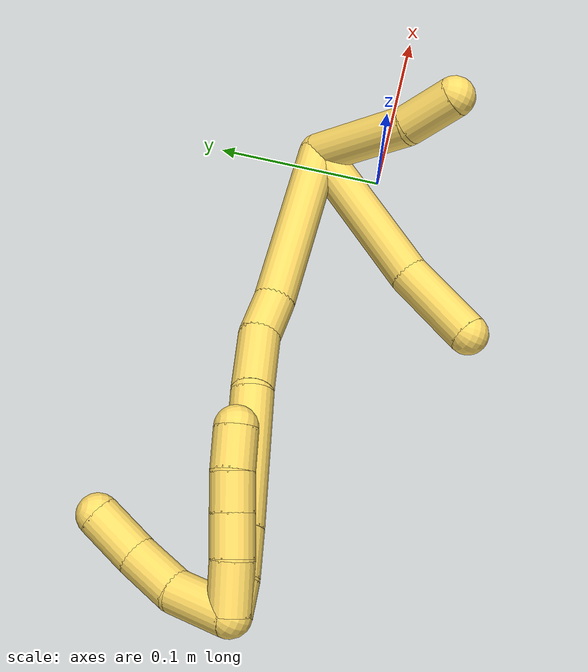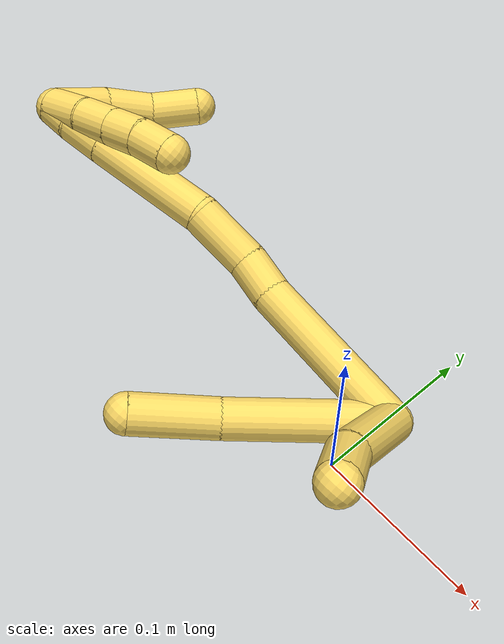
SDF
<sdf version="1.7">
 <world name="default">
  <model name="5">
   <static>0</static>
   <link name="5">
    <collision name="collision-cylinder-e_1_2_8">
     <pose>-0.032607 -0.017758 -0.030638 2.61632 -0.744179 -1.93515</pose>
     <geometry><cylinder><radius>0.0125</radius><length>0.096276</length></cylinder></geometry>
     <surface>
      <friction><ode><mu>1.16</mu><mu2>1.16</mu2><slip1>0</slip1><slip2>0</slip2></ode></friction>
      <contact><ode><kp>1e+06</kp><kd>1</kd><max_vel>0</max_vel><min_depth>0.001</min_depth></ode></contact>
     </surface>
    </collision>
    <visual name="visual-cylinder-e_1_2_8">
     <pose>-0.032607 -0.017758 -0.030638 2.61632 -0.744179 -1.93515</pose>
     <geometry><cylinder><radius>0.0125</radius><length>0.096276</length></cylinder></geometry>
     <material><ambient>1 0.858824 0.4 1</ambient></material>
    </visual>
    <collision name="collision-cylinder-e_2_8_6">
     <pose>-0.081445 -0.050538 -0.076523 2.36357 -0.64879 -1.37409</pose>
     <geometry><cylinder><radius>0.0125</radius><length>0.053724</length></cylinder></geometry>
     <surface>
      <friction><ode><mu>1.16</mu><mu2>1.16</mu2><slip1>0</slip1><slip2>0</slip2></ode></friction>
      <contact><ode><kp>1e+06</kp><kd>1</kd><max_vel>0</max_vel><min_depth>0.001</min_depth></ode></contact>
     </surface>
    </collision>
    <visual name="visual-cylinder-e_2_8_6">
     <pose>-0.081445 -0.050538 -0.076523 2.36357 -0.64879 -1.37409</pose>
     <geometry><cylinder><radius>0.0125</radius><length>0.053724</length></cylinder></geometry>
     <material><ambient>1 0.858824 0.4 1</ambient></material>
    </visual>
    <collision name="collision-cylinder-e_1_2_9">
     <pose>0.005751 -0.030387 -0.011331 1.92771 0.175524 0.252086</pose>
     <geometry><cylinder><radius>0.0125</radius><length>0.065873</length></cylinder></geometry>
     <surface>
      <friction><ode><mu>1.16</mu><mu2>1.16</mu2><slip1>0</slip1><slip2>0</slip2></ode></friction>
      <contact><ode><kp>1e+06</kp><kd>1</kd><max_vel>0</max_vel><min_depth>0.001</min_depth></ode></contact>
     </surface>
    </collision>
    <visual name="visual-cylinder-e_1_2_9">
     <pose>0.005751 -0.030387 -0.011331 1.92771 0.175524 0.252086</pose>
     <geometry><cylinder><radius>0.0125</radius><length>0.065873</length></cylinder></geometry>
     <material><ambient>1 0.858824 0.4 1</ambient></material>
    </visual>
    <collision name="collision-cylinder-e_2_9_5">
     <pose>0.018949 -0.075279 -0.027691 1.90455 0.451589 0.624438</pose>
     <geometry><cylinder><radius>0.0125</radius><length>0.034127</length></cylinder></geometry>
     <surface>
      <friction><ode><mu>1.16</mu><mu2>1.16</mu2><slip1>0</slip1><slip2>0</slip2></ode></friction>
      <contact><ode><kp>1e+06</kp><kd>1</kd><max_vel>0</max_vel><min_depth>0.001</min_depth></ode></contact>
     </surface>
    </collision>
    <visual name="visual-cylinder-e_2_9_5">
     <pose>0.018949 -0.075279 -0.027691 1.90455 0.451589 0.624438</pose>
     <geometry><cylinder><radius>0.0125</radius><length>0.034127</length></cylinder></geometry>
     <material><ambient>1 0.858824 0.4 1</ambient></material>
    </visual>
    <collision name="collision-cylinder-e_1_2_10">
     <pose>-0.052295 -0.004303 0.004489 0.764189 -1.45244 -0.685601</pose>
     <geometry><cylinder><radius>0.0125</radius><length>0.105327</length></cylinder></geometry>
     <surface>
      <friction><ode><mu>1.16</mu><mu2>1.16</mu2><slip1>0</slip1><slip2>0</slip2></ode></friction>
      <contact><ode><kp>1e+06</kp><kd>1</kd><max_vel>0</max_vel><min_depth>0.001</min_depth></ode></contact>
     </surface>
    </collision>
    <visual name="visual-cylinder-e_1_2_10">
     <pose>-0.052295 -0.004303 0.004489 0.764189 -1.45244 -0.685601</pose>
     <geometry><cylinder><radius>0.0125</radius><length>0.105327</length></cylinder></geometry>
     <material><ambient>1 0.858824 0.4 1</ambient></material>
    </visual>
    <collision name="collision-cylinder-e_2_10_11">
     <pose>-0.117354 -0.010729 0.011867 0.63396 -1.29698 -0.487318</pose>
     <geometry><cylinder><radius>0.0125</radius><length>0.026516</length></cylinder></geometry>
     <surface>
      <friction><ode><mu>1.16</mu><mu2>1.16</mu2><slip1>0</slip1><slip2>0</slip2></ode></friction>
      <contact><ode><kp>1e+06</kp><kd>1</kd><max_vel>0</max_vel><min_depth>0.001</min_depth></ode></contact>
     </surface>
    </collision>
    <visual name="visual-cylinder-e_2_10_11">
     <pose>-0.117354 -0.010729 0.011867 0.63396 -1.29698 -0.487318</pose>
     <geometry><cylinder><radius>0.0125</radius><length>0.026516</length></cylinder></geometry>
     <material><ambient>1 0.858824 0.4 1</ambient></material>
    </visual>
    <collision name="collision-cylinder-e_3_11_12">
     <pose>-0.148817 -0.020813 0.016367 1.37103 -1.16105 -0.984723</pose>
     <geometry><cylinder><radius>0.0125</radius><length>0.040774</length></cylinder></geometry>
     <surface>
      <friction><ode><mu>1.16</mu><mu2>1.16</mu2><slip1>0</slip1><slip2>0</slip2></ode></friction>
      <contact><ode><kp>1e+06</kp><kd>1</kd><max_vel>0</max_vel><min_depth>0.001</min_depth></ode></contact>
     </surface>
    </collision>
    <visual name="visual-cylinder-e_3_11_12">
     <pose>-0.148817 -0.020813 0.016367 1.37103 -1.16105 -0.984723</pose>
     <geometry><cylinder><radius>0.0125</radius><length>0.040774</length></cylinder></geometry>
     <material><ambient>1 0.858824 0.4 1</ambient></material>
    </visual>
    <collision name="collision-cylinder-e_4_12_13">
     <pose>-0.206786 -0.035975 0.014301 2.04292 -1.36771 -1.85318</pose>
     <geometry><cylinder><radius>0.0125</radius><length>0.080188</length></cylinder></geometry>
     <surface>
      <friction><ode><mu>1.16</mu><mu2>1.16</mu2><slip1>0</slip1><slip2>0</slip2></ode></friction>
      <contact><ode><kp>1e+06</kp><kd>1</kd><max_vel>0</max_vel><min_depth>0.001</min_depth></ode></contact>
     </surface>
    </collision>
    <visual name="visual-cylinder-e_4_12_13">
     <pose>-0.206786 -0.035975 0.014301 2.04292 -1.36771 -1.85318</pose>
     <geometry><cylinder><radius>0.0125</radius><length>0.080188</length></cylinder></geometry>
     <material><ambient>1 0.858824 0.4 1</ambient></material>
    </visual>
    <collision name="collision-cylinder-e_5_13_14">
     <pose>-0.259409 -0.045455 0.009581 2.00007 -1.38538 -1.82464</pose>
     <geometry><cylinder><radius>0.0125</radius><length>0.027173</length></cylinder></geometry>
     <surface>
      <friction><ode><mu>1.16</mu><mu2>1.16</mu2><slip1>0</slip1><slip2>0</slip2></ode></friction>
      <contact><ode><kp>1e+06</kp><kd>1</kd><max_vel>0</max_vel><min_depth>0.001</min_depth></ode></contact>
     </surface>
    </collision>
    <visual name="visual-cylinder-e_5_13_14">
     <pose>-0.259409 -0.045455 0.009581 2.00007 -1.38538 -1.82464</pose>
     <geometry><cylinder><radius>0.0125</radius><length>0.027173</length></cylinder></geometry>
     <material><ambient>1 0.858824 0.4 1</ambient></material>
    </visual>
    <collision name="collision-cylinder-e_6_14_1">
     <pose>-0.282763 -0.048173 0.008352 1.97184 -1.52295 -1.92738</pose>
     <geometry><cylinder><radius>0.0125</radius><length>0.020024</length></cylinder></geometry>
     <surface>
      <friction><ode><mu>1.16</mu><mu2>1.16</mu2><slip1>0</slip1><slip2>0</slip2></ode></friction>
      <contact><ode><kp>1e+06</kp><kd>1</kd><max_vel>0</max_vel><min_depth>0.001</min_depth></ode></contact>
     </surface>
    </collision>
    <visual name="visual-cylinder-e_6_14_1">
     <pose>-0.282763 -0.048173 0.008352 1.97184 -1.52295 -1.92738</pose>
     <geometry><cylinder><radius>0.0125</radius><length>0.020024</length></cylinder></geometry>
     <material><ambient>1 0.858824 0.4 1</ambient></material>
    </visual>
    <collision name="collision-cylinder-e_1_1_15">
     <pose>-0.289202 -0.034739 0.018664 -0.923 0.201909 -0.100671</pose>
     <geometry><cylinder><radius>0.0125</radius><length>0.03552</length></cylinder></geometry>
     <surface>
      <friction><ode><mu>1.16</mu><mu2>1.16</mu2><slip1>0</slip1><slip2>0</slip2></ode></friction>
      <contact><ode><kp>1e+06</kp><kd>1</kd><max_vel>0</max_vel><min_depth>0.001</min_depth></ode></contact>
     </surface>
    </collision>
    <visual name="visual-cylinder-e_1_1_15">
     <pose>-0.289202 -0.034739 0.018664 -0.923 0.201909 -0.100671</pose>
     <geometry><cylinder><radius>0.0125</radius><length>0.03552</length></cylinder></geometry>
     <material><ambient>1 0.858824 0.4 1</ambient></material>
    </visual>
    <collision name="collision-cylinder-e_2_15_16">
     <pose>-0.278109 -0.009517 0.037991 -0.909696 0.482513 -0.239508</pose>
     <geometry><cylinder><radius>0.0125</radius><length>0.03246</length></cylinder></geometry>
     <surface>
      <friction><ode><mu>1.16</mu><mu2>1.16</mu2><slip1>0</slip1><slip2>0</slip2></ode></friction>
      <contact><ode><kp>1e+06</kp><kd>1</kd><max_vel>0</max_vel><min_depth>0.001</min_depth></ode></contact>
     </surface>
    </collision>
    <visual name="visual-cylinder-e_2_15_16">
     <pose>-0.278109 -0.009517 0.037991 -0.909696 0.482513 -0.239508</pose>
     <geometry><cylinder><radius>0.0125</radius><length>0.03246</length></cylinder></geometry>
     <material><ambient>1 0.858824 0.4 1</ambient></material>
    </visual>
    <collision name="collision-cylinder-e_3_16_4">
     <pose>-0.262094 0.00873 0.058512 -0.532978 0.558523 -0.156239</pose>
     <geometry><cylinder><radius>0.0125</radius><length>0.03202</length></cylinder></geometry>
     <surface>
      <friction><ode><mu>1.16</mu><mu2>1.16</mu2><slip1>0</slip1><slip2>0</slip2></ode></friction>
      <contact><ode><kp>1e+06</kp><kd>1</kd><max_vel>0</max_vel><min_depth>0.001</min_depth></ode></contact>
     </surface>
    </collision>
    <visual name="visual-cylinder-e_3_16_4">
     <pose>-0.262094 0.00873 0.058512 -0.532978 0.558523 -0.156239</pose>
     <geometry><cylinder><radius>0.0125</radius><length>0.03202</length></cylinder></geometry>
     <material><ambient>1 0.858824 0.4 1</ambient></material>
    </visual>
    <collision name="collision-cylinder-e_1_1_17">
     <pose>-0.278824 -0.050755 0.012412 0.466851 1.24195 0.336955</pose>
     <geometry><cylinder><radius>0.0125</radius><length>0.029457</length></cylinder></geometry>
     <surface>
      <friction><ode><mu>1.16</mu><mu2>1.16</mu2><slip1>0</slip1><slip2>0</slip2></ode></friction>
      <contact><ode><kp>1e+06</kp><kd>1</kd><max_vel>0</max_vel><min_depth>0.001</min_depth></ode></contact>
     </surface>
    </collision>
    <visual name="visual-cylinder-e_1_1_17">
     <pose>-0.278824 -0.050755 0.012412 0.466851 1.24195 0.336955</pose>
     <geometry><cylinder><radius>0.0125</radius><length>0.029457</length></cylinder></geometry>
     <material><ambient>1 0.858824 0.4 1</ambient></material>
    </visual>
    <collision name="collision-cylinder-e_2_17_18">
     <pose>-0.253218 -0.053077 0.020081 0.053 1.28518 0.039679</pose>
     <geometry><cylinder><radius>0.0125</radius><length>0.02432</length></cylinder></geometry>
     <surface>
      <friction><ode><mu>1.16</mu><mu2>1.16</mu2><slip1>0</slip1><slip2>0</slip2></ode></friction>
      <contact><ode><kp>1e+06</kp><kd>1</kd><max_vel>0</max_vel><min_depth>0.001</min_depth></ode></contact>
     </surface>
    </collision>
    <visual name="visual-cylinder-e_2_17_18">
     <pose>-0.253218 -0.053077 0.020081 0.053 1.28518 0.039679</pose>
     <geometry><cylinder><radius>0.0125</radius><length>0.02432</length></cylinder></geometry>
     <material><ambient>1 0.858824 0.4 1</ambient></material>
    </visual>
    <collision name="collision-cylinder-e_3_18_19">
     <pose>-0.230937 -0.053468 0.026593 0.067865 1.28684 0.050899</pose>
     <geometry><cylinder><radius>0.0125</radius><length>0.022112</length></cylinder></geometry>
     <surface>
      <friction><ode><mu>1.16</mu><mu2>1.16</mu2><slip1>0</slip1><slip2>0</slip2></ode></friction>
      <contact><ode><kp>1e+06</kp><kd>1</kd><max_vel>0</max_vel><min_depth>0.001</min_depth></ode></contact>
     </surface>
    </collision>
    <visual name="visual-cylinder-e_3_18_19">
     <pose>-0.230937 -0.053468 0.026593 0.067865 1.28684 0.050899</pose>
     <geometry><cylinder><radius>0.0125</radius><length>0.022112</length></cylinder></geometry>
     <material><ambient>1 0.858824 0.4 1</ambient></material>
    </visual>
    <collision name="collision-cylinder-e_4_19_3">
     <pose>-0.208449 -0.053288 0.031728 -0.188538 1.3972 -0.15849</pose>
     <geometry><cylinder><radius>0.0125</radius><length>0.024111</length></cylinder></geometry>
     <surface>
      <friction><ode><mu>1.16</mu><mu2>1.16</mu2><slip1>0</slip1><slip2>0</slip2></ode></friction>
      <contact><ode><kp>1e+06</kp><kd>1</kd><max_vel>0</max_vel><min_depth>0.001</min_depth></ode></contact>
     </surface>
    </collision>
    <visual name="visual-cylinder-e_4_19_3">
     <pose>-0.208449 -0.053288 0.031728 -0.188538 1.3972 -0.15849</pose>
     <geometry><cylinder><radius>0.0125</radius><length>0.024111</length></cylinder></geometry>
     <material><ambient>1 0.858824 0.4 1</ambient></material>
    </visual>
    <collision name="collision-sphere-3">
     <pose>-0.196575 -0.052898 0.033774 0 -0 0</pose>
     <geometry><sphere><radius>0.0125</radius></sphere></geometry>
     <surface>
      <friction><ode><mu>1.16</mu><mu2>1.16</mu2><slip1>0</slip1><slip2>0</slip2></ode></friction>
      <contact><ode><kp>1e+06</kp><kd>1</kd><max_vel>0</max_vel><min_depth>0.001</min_depth></ode></contact>
     </surface>
    </collision>
    <visual name="visual-sphere-3">
     <pose>-0.196575 -0.052898 0.033774 0 -0 0</pose>
     <geometry><sphere><radius>0.0125</radius></sphere></geometry>
     <material><ambient>1 0.858824 0.4 1</ambient></material>
    </visual>
    <collision name="collision-sphere-19">
     <pose>-0.220324 -0.053678 0.029683 0 -0 0</pose>
     <geometry><sphere><radius>0.0125</radius></sphere></geometry>
     <surface>
      <friction><ode><mu>1.16</mu><mu2>1.16</mu2><slip1>0</slip1><slip2>0</slip2></ode></friction>
      <contact><ode><kp>1e+06</kp><kd>1</kd><max_vel>0</max_vel><min_depth>0.001</min_depth></ode></contact>
     </surface>
    </collision>
    <visual name="visual-sphere-19">
     <pose>-0.220324 -0.053678 0.029683 0 -0 0</pose>
     <geometry><sphere><radius>0.0125</radius></sphere></geometry>
     <material><ambient>1 0.858824 0.4 1</ambient></material>
    </visual>
    <collision name="collision-sphere-10">
     <pose>-0.10459 -0.008606 0.008979 0 -0 0</pose>
     <geometry><sphere><radius>0.0125</radius></sphere></geometry>
     <surface>
      <friction><ode><mu>1.16</mu><mu2>1.16</mu2><slip1>0</slip1><slip2>0</slip2></ode></friction>
      <contact><ode><kp>1e+06</kp><kd>1</kd><max_vel>0</max_vel><min_depth>0.001</min_depth></ode></contact>
     </surface>
    </collision>
    <visual name="visual-sphere-10">
     <pose>-0.10459 -0.008606 0.008979 0 -0 0</pose>
     <geometry><sphere><radius>0.0125</radius></sphere></geometry>
     <material><ambient>1 0.858824 0.4 1</ambient></material>
    </visual>
    <collision name="collision-sphere-5">
     <pose>0.026396 -0.089785 -0.03272 0 -0 0</pose>
     <geometry><sphere><radius>0.0125</radius></sphere></geometry>
     <surface>
      <friction><ode><mu>1.16</mu><mu2>1.16</mu2><slip1>0</slip1><slip2>0</slip2></ode></friction>
      <contact><ode><kp>1e+06</kp><kd>1</kd><max_vel>0</max_vel><min_depth>0.001</min_depth></ode></contact>
     </surface>
    </collision>
    <visual name="visual-sphere-5">
     <pose>0.026396 -0.089785 -0.03272 0 -0 0</pose>
     <geometry><sphere><radius>0.0125</radius></sphere></geometry>
     <material><ambient>1 0.858824 0.4 1</ambient></material>
    </visual>
    <collision name="collision-sphere-6">
     <pose>-0.097676 -0.065561 -0.091769 0 -0 0</pose>
     <geometry><sphere><radius>0.0125</radius></sphere></geometry>
     <surface>
      <friction><ode><mu>1.16</mu><mu2>1.16</mu2><slip1>0</slip1><slip2>0</slip2></ode></friction>
      <contact><ode><kp>1e+06</kp><kd>1</kd><max_vel>0</max_vel><min_depth>0.001</min_depth></ode></contact>
     </surface>
    </collision>
    <visual name="visual-sphere-6">
     <pose>-0.097676 -0.065561 -0.091769 0 -0 0</pose>
     <geometry><sphere><radius>0.0125</radius></sphere></geometry>
     <material><ambient>1 0.858824 0.4 1</ambient></material>
    </visual>
    <collision name="collision-sphere-9">
     <pose>0.011503 -0.060773 -0.022661 0 -0 0</pose>
     <geometry><sphere><radius>0.0125</radius></sphere></geometry>
     <surface>
      <friction><ode><mu>1.16</mu><mu2>1.16</mu2><slip1>0</slip1><slip2>0</slip2></ode></friction>
      <contact><ode><kp>1e+06</kp><kd>1</kd><max_vel>0</max_vel><min_depth>0.001</min_depth></ode></contact>
     </surface>
    </collision>
    <visual name="visual-sphere-9">
     <pose>0.011503 -0.060773 -0.022661 0 -0 0</pose>
     <geometry><sphere><radius>0.0125</radius></sphere></geometry>
     <material><ambient>1 0.858824 0.4 1</ambient></material>
    </visual>
    <collision name="collision-sphere-2">
     <geometry><sphere><radius>0.0125</radius></sphere></geometry>
     <surface>
      <friction><ode><mu>1.16</mu><mu2>1.16</mu2><slip1>0</slip1><slip2>0</slip2></ode></friction>
      <contact><ode><kp>1e+06</kp><kd>1</kd><max_vel>0</max_vel><min_depth>0.001</min_depth></ode></contact>
     </surface>
    </collision>
    <visual name="visual-sphere-2">
     <geometry><sphere><radius>0.0125</radius></sphere></geometry>
     <material><ambient>1 0.858824 0.4 1</ambient></material>
    </visual>
    <collision name="collision-sphere-8">
     <pose>-0.065214 -0.035515 -0.061277 0 -0 0</pose>
     <geometry><sphere><radius>0.0125</radius></sphere></geometry>
     <surface>
      <friction><ode><mu>1.16</mu><mu2>1.16</mu2><slip1>0</slip1><slip2>0</slip2></ode></friction>
      <contact><ode><kp>1e+06</kp><kd>1</kd><max_vel>0</max_vel><min_depth>0.001</min_depth></ode></contact>
     </surface>
    </collision>
    <visual name="visual-sphere-8">
     <pose>-0.065214 -0.035515 -0.061277 0 -0 0</pose>
     <geometry><sphere><radius>0.0125</radius></sphere></geometry>
     <material><ambient>1 0.858824 0.4 1</ambient></material>
    </visual>
    <collision name="collision-sphere-11">
     <pose>-0.130118 -0.012853 0.014755 0 -0 0</pose>
     <geometry><sphere><radius>0.0125</radius></sphere></geometry>
     <surface>
      <friction><ode><mu>1.16</mu><mu2>1.16</mu2><slip1>0</slip1><slip2>0</slip2></ode></friction>
      <contact><ode><kp>1e+06</kp><kd>1</kd><max_vel>0</max_vel><min_depth>0.001</min_depth></ode></contact>
     </surface>
    </collision>
    <visual name="visual-sphere-11">
     <pose>-0.130118 -0.012853 0.014755 0 -0 0</pose>
     <geometry><sphere><radius>0.0125</radius></sphere></geometry>
     <material><ambient>1 0.858824 0.4 1</ambient></material>
    </visual>
    <collision name="collision-sphere-12">
     <pose>-0.167516 -0.028773 0.017979 0 -0 0</pose>
     <geometry><sphere><radius>0.0125</radius></sphere></geometry>
     <surface>
      <friction><ode><mu>1.16</mu><mu2>1.16</mu2><slip1>0</slip1><slip2>0</slip2></ode></friction>
      <contact><ode><kp>1e+06</kp><kd>1</kd><max_vel>0</max_vel><min_depth>0.001</min_depth></ode></contact>
     </surface>
    </collision>
    <visual name="visual-sphere-12">
     <pose>-0.167516 -0.028773 0.017979 0 -0 0</pose>
     <geometry><sphere><radius>0.0125</radius></sphere></geometry>
     <material><ambient>1 0.858824 0.4 1</ambient></material>
    </visual>
    <collision name="collision-sphere-13">
     <pose>-0.246056 -0.043177 0.010623 0 -0 0</pose>
     <geometry><sphere><radius>0.0125</radius></sphere></geometry>
     <surface>
      <friction><ode><mu>1.16</mu><mu2>1.16</mu2><slip1>0</slip1><slip2>0</slip2></ode></friction>
      <contact><ode><kp>1e+06</kp><kd>1</kd><max_vel>0</max_vel><min_depth>0.001</min_depth></ode></contact>
     </surface>
    </collision>
    <visual name="visual-sphere-13">
     <pose>-0.246056 -0.043177 0.010623 0 -0 0</pose>
     <geometry><sphere><radius>0.0125</radius></sphere></geometry>
     <material><ambient>1 0.858824 0.4 1</ambient></material>
    </visual>
    <collision name="collision-sphere-14">
     <pose>-0.272763 -0.047732 0.008538 0 -0 0</pose>
     <geometry><sphere><radius>0.0125</radius></sphere></geometry>
     <surface>
      <friction><ode><mu>1.16</mu><mu2>1.16</mu2><slip1>0</slip1><slip2>0</slip2></ode></friction>
      <contact><ode><kp>1e+06</kp><kd>1</kd><max_vel>0</max_vel><min_depth>0.001</min_depth></ode></contact>
     </surface>
    </collision>
    <visual name="visual-sphere-14">
     <pose>-0.272763 -0.047732 0.008538 0 -0 0</pose>
     <geometry><sphere><radius>0.0125</radius></sphere></geometry>
     <material><ambient>1 0.858824 0.4 1</ambient></material>
    </visual>
    <collision name="collision-sphere-1">
     <pose>-0.292764 -0.048614 0.008165 0 -0 0</pose>
     <geometry><sphere><radius>0.0125</radius></sphere></geometry>
     <surface>
      <friction><ode><mu>1.16</mu><mu2>1.16</mu2><slip1>0</slip1><slip2>0</slip2></ode></friction>
      <contact><ode><kp>1e+06</kp><kd>1</kd><max_vel>0</max_vel><min_depth>0.001</min_depth></ode></contact>
     </surface>
    </collision>
    <visual name="visual-sphere-1">
     <pose>-0.292764 -0.048614 0.008165 0 -0 0</pose>
     <geometry><sphere><radius>0.0125</radius></sphere></geometry>
     <material><ambient>1 0.858824 0.4 1</ambient></material>
    </visual>
    <collision name="collision-sphere-18">
     <pose>-0.24155 -0.053258 0.023502 0 -0 0</pose>
     <geometry><sphere><radius>0.0125</radius></sphere></geometry>
     <surface>
      <friction><ode><mu>1.16</mu><mu2>1.16</mu2><slip1>0</slip1><slip2>0</slip2></ode></friction>
      <contact><ode><kp>1e+06</kp><kd>1</kd><max_vel>0</max_vel><min_depth>0.001</min_depth></ode></contact>
     </surface>
    </collision>
    <visual name="visual-sphere-18">
     <pose>-0.24155 -0.053258 0.023502 0 -0 0</pose>
     <geometry><sphere><radius>0.0125</radius></sphere></geometry>
     <material><ambient>1 0.858824 0.4 1</ambient></material>
    </visual>
    <collision name="collision-sphere-15">
     <pose>-0.28564 -0.020865 0.029163 0 -0 0</pose>
     <geometry><sphere><radius>0.0125</radius></sphere></geometry>
     <surface>
      <friction><ode><mu>1.16</mu><mu2>1.16</mu2><slip1>0</slip1><slip2>0</slip2></ode></friction>
      <contact><ode><kp>1e+06</kp><kd>1</kd><max_vel>0</max_vel><min_depth>0.001</min_depth></ode></contact>
     </surface>
    </collision>
    <visual name="visual-sphere-15">
     <pose>-0.28564 -0.020865 0.029163 0 -0 0</pose>
     <geometry><sphere><radius>0.0125</radius></sphere></geometry>
     <material><ambient>1 0.858824 0.4 1</ambient></material>
    </visual>
    <collision name="collision-sphere-16">
     <pose>-0.270579 0.001831 0.046818 0 -0 0</pose>
     <geometry><sphere><radius>0.0125</radius></sphere></geometry>
     <surface>
      <friction><ode><mu>1.16</mu><mu2>1.16</mu2><slip1>0</slip1><slip2>0</slip2></ode></friction>
      <contact><ode><kp>1e+06</kp><kd>1</kd><max_vel>0</max_vel><min_depth>0.001</min_depth></ode></contact>
     </surface>
    </collision>
    <visual name="visual-sphere-16">
     <pose>-0.270579 0.001831 0.046818 0 -0 0</pose>
     <geometry><sphere><radius>0.0125</radius></sphere></geometry>
     <material><ambient>1 0.858824 0.4 1</ambient></material>
    </visual>
    <collision name="collision-sphere-4">
     <pose>-0.25361 0.015628 0.070205 0 -0 0</pose>
     <geometry><sphere><radius>0.0125</radius></sphere></geometry>
     <surface>
      <friction><ode><mu>1.16</mu><mu2>1.16</mu2><slip1>0</slip1><slip2>0</slip2></ode></friction>
      <contact><ode><kp>1e+06</kp><kd>1</kd><max_vel>0</max_vel><min_depth>0.001</min_depth></ode></contact>
     </surface>
    </collision>
    <visual name="visual-sphere-4">
     <pose>-0.25361 0.015628 0.070205 0 -0 0</pose>
     <geometry><sphere><radius>0.0125</radius></sphere></geometry>
     <material><ambient>1 0.858824 0.4 1</ambient></material>
    </visual>
    <collision name="collision-sphere-17">
     <pose>-0.264885 -0.052895 0.01666 0 -0 0</pose>
     <geometry><sphere><radius>0.0125</radius></sphere></geometry>
     <surface>
      <friction><ode><mu>1.16</mu><mu2>1.16</mu2><slip1>0</slip1><slip2>0</slip2></ode></friction>
      <contact><ode><kp>1e+06</kp><kd>1</kd><max_vel>0</max_vel><min_depth>0.001</min_depth></ode></contact>
     </surface>
    </collision>
    <visual name="visual-sphere-17">
     <pose>-0.264885 -0.052895 0.01666 0 -0 0</pose>
     <geometry><sphere><radius>0.0125</radius></sphere></geometry>
     <material><ambient>1 0.858824 0.4 1</ambient></material>
    </visual>
    <inertial>
     <pose>-0.136887 -0.029577 0.000338 0 -0 0</pose>
     <mass>0.75</mass>
     <inertia>
      <ixx>-6.2e-05</ixx>
      <ixy>0</ixy>
      <ixz>0</ixz>
      <iyy>0.000133</iyy>
      <iyz>0</iyz>
      <izz>0.000276</izz>
     </inertia>
    </inertial>
   </link>
   <pose>0.006829 0.039234 0.012344 -1.03229 0.005891 -0.001658</pose>
  </model>
 </world>
</sdf>
